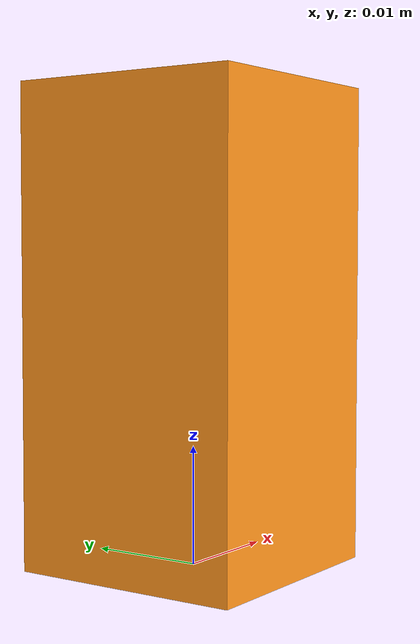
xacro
<?xml version="1.0"?>
<robot xmlns:xacro="http://www.ros.org/wiki/xacro" name="ur5" >
  <xacro:property name="width" value="0.02" />
  <xacro:property name="height" value="0.04" />
  <xacro:property name="roll" value="1.57" />
  <xacro:property name="x" value="3.2" />
  <xacro:property name="y" value="3" />
  <gazebo>
    <plugin name="gazebo_ros_control" filename="libgazebo_ros_control.so">
    </plugin>
  </gazebo>
  <link name="link1">
    <collision>
      <origin xyz="0 0 ${height/2}" rpy="0 0 0"/>
      <geometry>
        <box size="${width} ${width} ${height}"/>
      </geometry>
    </collision>

    <visual>
      <origin xyz="0 0 ${height/2}" rpy="0 0 0"/>
      <geometry>
        <box size="${width} ${width} ${height}"/>
      </geometry>
      <material name="orange"/>
    </visual>

    <inertial>
      <origin xyz="0 0 1" rpy="0 0 0"/>
      <mass value="1"/>
      <inertia
        ixx="1.0" ixy="0.0" ixz="0.0"
        iyy="1.0" iyz="0.0"
        izz="1.0"/>
    </inertial>
  </link>

  <link name="link2">
    <collision>
      <origin xyz="0 0 ${height/2}" rpy="0 0 0"/>
      <geometry>
        <box size="${width} ${width} ${height}"/>
      </geometry>
    </collision>

    <visual>
      <origin xyz="0 0 ${height/2}" rpy="0 0 0"/>
      <geometry>
        <box size="${width} ${width} ${height}"/>
      </geometry>
      <material name="orange"/>
    </visual>

    <inertial>
      <origin xyz="0 0 1" rpy="0 0 0"/>
      <mass value="1"/>
      <inertia
        ixx="1.0" ixy="0.0" ixz="0.0"
        iyy="1.0" iyz="0.0"
        izz="1.0"/>
    </inertial>
  </link>

  <joint type="fixed" name="circo_joint">
      <parent link="link1"/>
      <child link="link2"/>
      <axis xyz="1 0 0"/>
  </joint>

</robot>
